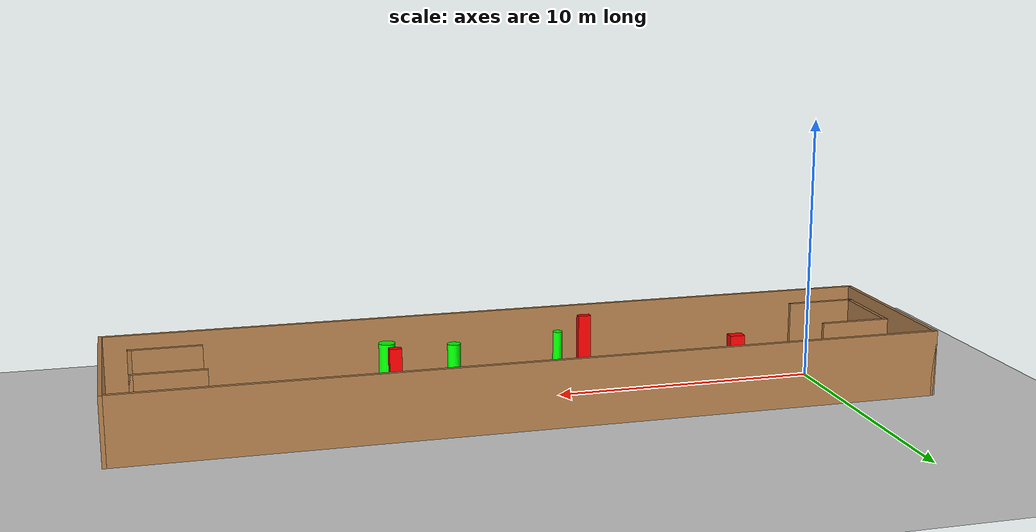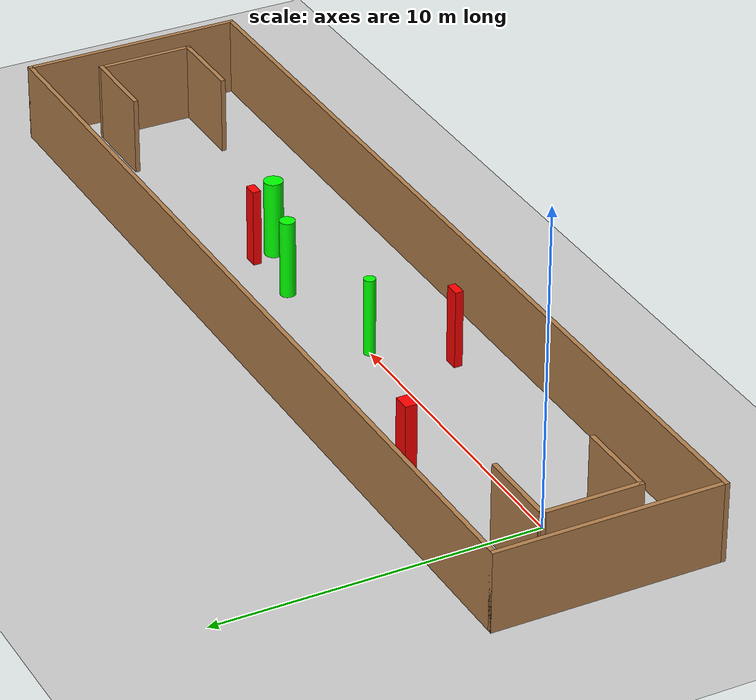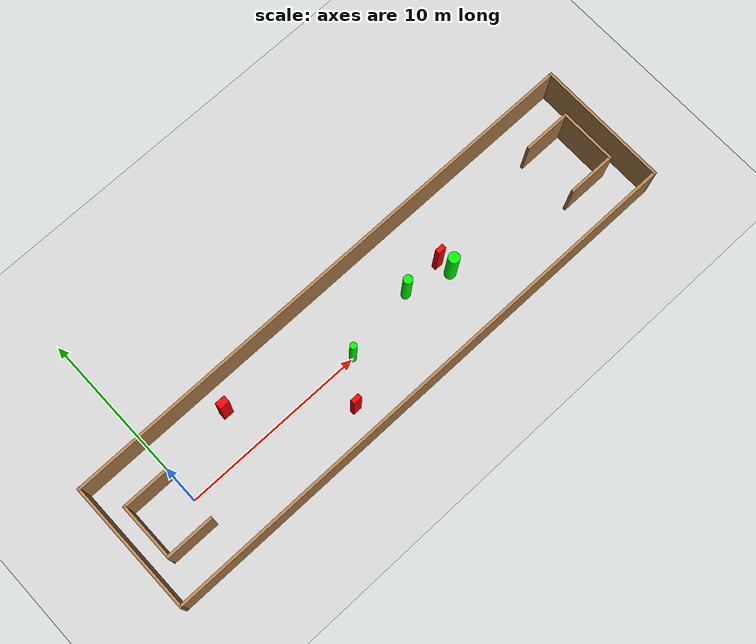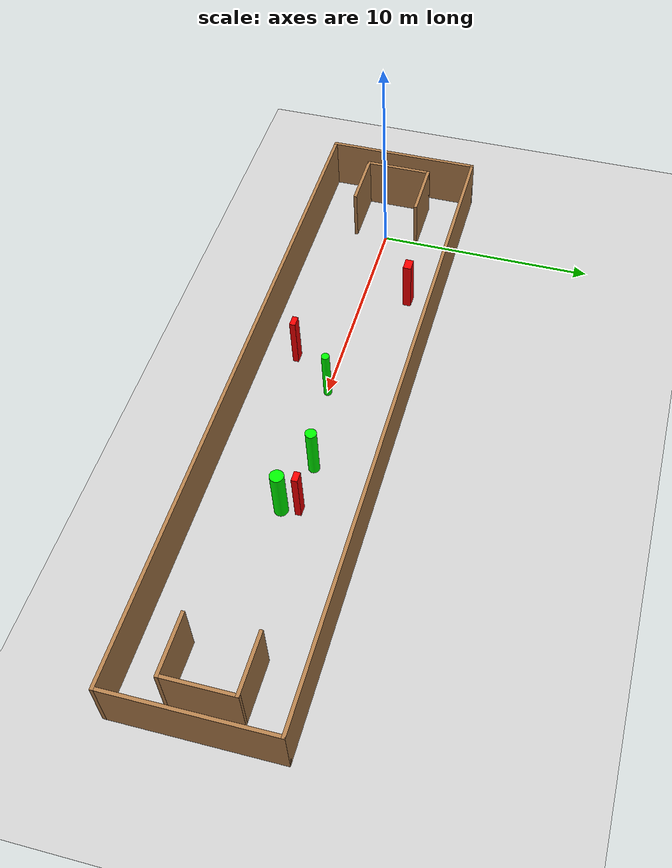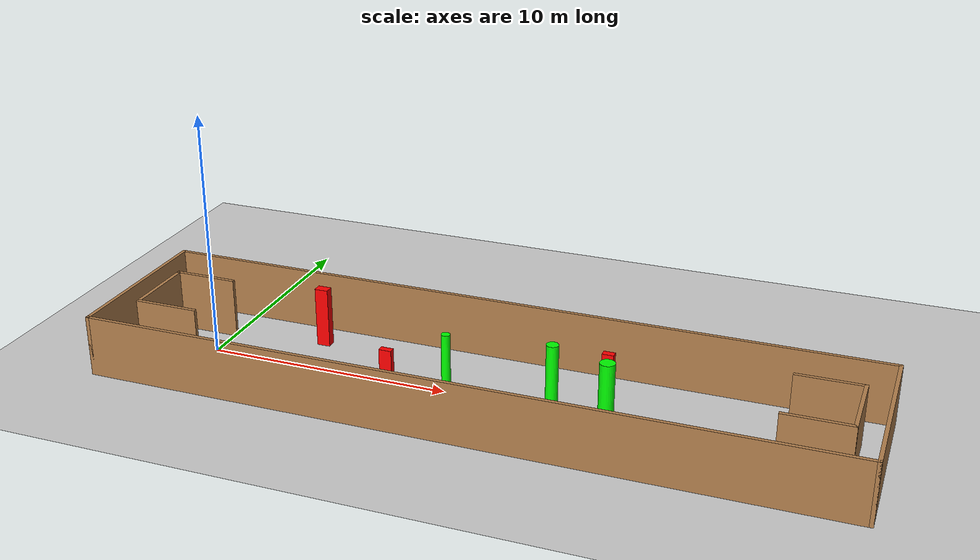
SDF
<sdf version="1.7">
 <world name="default">
  <light name="sun" type="directional">
   <pose>0 0 10 0 -0 0</pose>
   <diffuse>0.8 0.8 0.8 1</diffuse>
   <specular>0.2 0.2 0.2 1</specular>
   <attenuation>
    <range>1000</range>
    <constant>0.9</constant>
    <linear>0.01</linear>
    <quadratic>0.001</quadratic>
   </attenuation>
   <direction>-0.5 0.1 -0.9</direction>
   <spot><inner_angle>0</inner_angle><outer_angle>0</outer_angle><falloff>0</falloff></spot>
  </light>
  <model name="ground_plane">
   <static>1</static>
   <link name="link">
    <collision name="collision">
     <geometry><plane><normal>0 0 1</normal><size>100 100</size></plane></geometry>
     <surface>
      <contact><collide_bitmask>65535</collide_bitmask></contact>
      <friction><ode><mu>100</mu><mu2>50</mu2></ode></friction>
     </surface>
    </collision>
    <visual name="visual">
     <cast_shadows>0</cast_shadows>
     <geometry><plane><normal>0 0 1</normal><size>100 100</size></plane></geometry>
     <material>
      <script><uri>file://media/materials/scripts/gazebo.material</uri><name>Gazebo/Grey</name></script>
     </material>
    </visual>
   </link>
  </model>
  <gravity>0 0 -9.8</gravity>
  <magnetic_field>6e-06 2.3e-05 -4.2e-05</magnetic_field>
  <atmosphere type="adiabatic"/>
  <physics type="ode">
   <max_step_size>0.001</max_step_size>
   <real_time_factor>1</real_time_factor>
   <real_time_update_rate>1000</real_time_update_rate>
  </physics>
  <scene><ambient>0.4 0.4 0.4 1</ambient><background>0.7 0.7 0.7 1</background><shadows>1</shadows></scene>
  <spherical_coordinates>
   <surface_model>EARTH_WGS84</surface_model>
   <latitude_deg>0</latitude_deg>
   <longitude_deg>0</longitude_deg>
   <elevation>0</elevation>
   <heading_deg>0</heading_deg>
  </spherical_coordinates>
  <model name="my_base_walls">
   <link name="Wall_0">
    <collision name="Wall_0_Collision">
     <geometry><box><size>7.15 0.15 2.5</size></box></geometry>
     <pose>0 0 1.25 0 -0 0</pose>
    </collision>
    <visual name="Wall_0_Visual">
     <pose>0 0 1.25 0 -0 0</pose>
     <geometry><box><size>7.15 0.15 2.5</size></box></geometry>
     <material>
      <script><uri>file://media/materials/scripts/gazebo.material</uri><name>Gazebo/Wood</name></script>
      <ambient>1 1 1 1</ambient>
     </material>
     <meta><layer>0</layer></meta>
    </visual>
    <pose>-15 0 0 0 -0 1.5708</pose>
   </link>
   <link name="Wall_10">
    <collision name="Wall_10_Collision">
     <geometry><box><size>2.65 0.15 2.5</size></box></geometry>
     <pose>0 0 1.25 0 -0 0</pose>
    </collision>
    <visual name="Wall_10_Visual">
     <pose>0 0 1.25 0 -0 0</pose>
     <geometry><box><size>2.65 0.15 2.5</size></box></geometry>
     <material>
      <script><uri>file://media/materials/scripts/gazebo.material</uri><name>Gazebo/Wood</name></script>
      <ambient>1 1 1 1</ambient>
     </material>
     <meta><layer>0</layer></meta>
    </visual>
    <pose>-12.75 -1.5 0 0 -0 0</pose>
   </link>
   <link name="Wall_12">
    <collision name="Wall_12_Collision">
     <geometry><box><size>2.65 0.15 2.5</size></box></geometry>
     <pose>0 0 1.25 0 -0 0</pose>
    </collision>
    <visual name="Wall_12_Visual">
     <pose>0 0 1.25 0 -0 0</pose>
     <geometry><box><size>2.65 0.15 2.5</size></box></geometry>
     <material>
      <script><uri>file://media/materials/scripts/gazebo.material</uri><name>Gazebo/Wood</name></script>
      <ambient>1 1 1 1</ambient>
     </material>
     <meta><layer>0</layer></meta>
    </visual>
    <pose>-12.75 1.5 0 0 -0 0</pose>
   </link>
   <link name="Wall_14">
    <collision name="Wall_14_Collision">
     <geometry><box><size>3.15 0.15 2.5</size></box></geometry>
     <pose>0 0 1.25 0 -0 0</pose>
    </collision>
    <visual name="Wall_14_Visual">
     <pose>0 0 1.25 0 -0 0</pose>
     <geometry><box><size>3.15 0.15 2.5</size></box></geometry>
     <material>
      <script><uri>file://media/materials/scripts/gazebo.material</uri><name>Gazebo/Wood</name></script>
      <ambient>1 1 1 1</ambient>
     </material>
     <meta><layer>0</layer></meta>
    </visual>
    <pose>14 0 0 0 -0 -1.5708</pose>
   </link>
   <link name="Wall_15">
    <collision name="Wall_15_Collision">
     <geometry><box><size>2.65 0.15 2.5</size></box></geometry>
     <pose>0 0 1.25 0 -0 0</pose>
    </collision>
    <visual name="Wall_15_Visual">
     <pose>0 0 1.25 0 -0 0</pose>
     <geometry><box><size>2.65 0.15 2.5</size></box></geometry>
     <material>
      <script><uri>file://media/materials/scripts/gazebo.material</uri><name>Gazebo/Wood</name></script>
      <ambient>1 1 1 1</ambient>
     </material>
     <meta><layer>0</layer></meta>
    </visual>
    <pose>12.75 -1.5 0 0 -0 3.14159</pose>
   </link>
   <link name="Wall_17">
    <collision name="Wall_17_Collision">
     <geometry><box><size>2.65 0.15 2.5</size></box></geometry>
     <pose>0 0 1.25 0 -0 0</pose>
    </collision>
    <visual name="Wall_17_Visual">
     <pose>0 0 1.25 0 -0 0</pose>
     <geometry><box><size>2.65 0.15 2.5</size></box></geometry>
     <material>
      <script><uri>file://media/materials/scripts/gazebo.material</uri><name>Gazebo/Wood</name></script>
      <ambient>1 1 1 1</ambient>
     </material>
     <meta><layer>0</layer></meta>
    </visual>
    <pose>12.75 1.5 0 0 -0 3.14159</pose>
   </link>
   <link name="Wall_2">
    <collision name="Wall_2_Collision">
     <geometry><box><size>30.15 0.15 2.5</size></box></geometry>
     <pose>0 0 1.25 0 -0 0</pose>
    </collision>
    <visual name="Wall_2_Visual">
     <pose>0 0 1.25 0 -0 0</pose>
     <geometry><box><size>30.15 0.15 2.5</size></box></geometry>
     <material>
      <script><uri>file://media/materials/scripts/gazebo.material</uri><name>Gazebo/Wood</name></script>
      <ambient>1 1 1 1</ambient>
     </material>
     <meta><layer>0</layer></meta>
    </visual>
    <pose>-0 -3.5 0 0 -0 0</pose>
   </link>
   <link name="Wall_4">
    <collision name="Wall_4_Collision">
     <geometry><box><size>30.15 0.15 2.5</size></box></geometry>
     <pose>0 0 1.25 0 -0 0</pose>
    </collision>
    <visual name="Wall_4_Visual">
     <pose>0 0 1.25 0 -0 0</pose>
     <geometry><box><size>30.15 0.15 2.5</size></box></geometry>
     <material>
      <script><uri>file://media/materials/scripts/gazebo.material</uri><name>Gazebo/Wood</name></script>
      <ambient>1 1 1 1</ambient>
     </material>
     <meta><layer>0</layer></meta>
    </visual>
    <pose>-0 3.5 0 0 -0 0</pose>
   </link>
   <link name="Wall_6">
    <collision name="Wall_6_Collision">
     <geometry><box><size>7.15 0.15 2.5</size></box></geometry>
     <pose>0 0 1.25 0 -0 0</pose>
    </collision>
    <visual name="Wall_6_Visual">
     <pose>0 0 1.25 0 -0 0</pose>
     <geometry><box><size>7.15 0.15 2.5</size></box></geometry>
     <material>
      <script><uri>file://media/materials/scripts/gazebo.material</uri><name>Gazebo/Wood</name></script>
      <ambient>1 1 1 1</ambient>
     </material>
     <meta><layer>0</layer></meta>
    </visual>
    <pose>15 0 0 0 -0 -1.5708</pose>
   </link>
   <link name="Wall_9">
    <collision name="Wall_9_Collision">
     <geometry><box><size>3.15 0.15 2.5</size></box></geometry>
     <pose>0 0 1.25 0 -0 0</pose>
    </collision>
    <visual name="Wall_9_Visual">
     <pose>0 0 1.25 0 -0 0</pose>
     <geometry><box><size>3.15 0.15 2.5</size></box></geometry>
     <material>
      <script><uri>file://media/materials/scripts/gazebo.material</uri><name>Gazebo/Wood</name></script>
      <ambient>1 1 1 1</ambient>
     </material>
     <meta><layer>0</layer></meta>
    </visual>
    <pose>-14 0 0 0 -0 -1.5708</pose>
   </link>
   <static>1</static>
   <pose>11.5 0 0 0 -0 0</pose>
  </model>
  <model name="cylinder1">
   <static>1</static>
   <link name="link">
    <inertial>
     <mass>1</mass>
     <inertia><ixx>0.5</ixx><ixy>0</ixy><ixz>0</ixz><iyy>0.5</iyy><iyz>0</iyz><izz>1</izz></inertia>
    </inertial>
    <collision name="collision">
     <geometry><cylinder><radius>0.3010212206394823</radius><length>2.5</length></cylinder></geometry>
    </collision>
    <visual name="visual">
     <geometry><cylinder><radius>0.3010212206394823</radius><length>2.5</length></cylinder></geometry>
     <material>
      <ambient>0 1 0 1</ambient>
      <diffuse>0 1 0 1</diffuse>
      <specular>0.1 0.1 0.1 1</specular>
      <emissive>0 0 0 0</emissive>
     </material>
    </visual>
   </link>
   <pose>16.474954149837103 -0.0678250759675576 1.25 0 0 0</pose>
  </model>
  <model name="cylinder2">
   <static>1</static>
   <link name="link">
    <inertial>
     <mass>1</mass>
     <inertia><ixx>0.5</ixx><ixy>0</ixy><ixz>0</ixz><iyy>0.5</iyy><iyz>0</iyz><izz>1</izz></inertia>
    </inertial>
    <collision name="collision">
     <geometry><cylinder><radius>0.24308472870980236</radius><length>2.5</length></cylinder></geometry>
    </collision>
    <visual name="visual">
     <geometry><cylinder><radius>0.24308472870980236</radius><length>2.5</length></cylinder></geometry>
     <material>
      <ambient>0 1 0 1</ambient>
      <diffuse>0 1 0 1</diffuse>
      <specular>0.1 0.1 0.1 1</specular>
      <emissive>0 0 0 0</emissive>
     </material>
    </visual>
   </link>
   <pose>14.146517803504352 0.6239491218257163 1.25 0 0 0</pose>
  </model>
  <model name="cylinder3">
   <static>1</static>
   <link name="link">
    <inertial>
     <mass>1</mass>
     <inertia><ixx>0.5</ixx><ixy>0</ixy><ixz>0</ixz><iyy>0.5</iyy><iyz>0</iyz><izz>1</izz></inertia>
    </inertial>
    <collision name="collision">
     <geometry><cylinder><radius>0.18088641584031986</radius><length>2.5</length></cylinder></geometry>
    </collision>
    <visual name="visual">
     <geometry><cylinder><radius>0.18088641584031986</radius><length>2.5</length></cylinder></geometry>
     <material>
      <ambient>0 1 0 1</ambient>
      <diffuse>0 1 0 1</diffuse>
      <specular>0.1 0.1 0.1 1</specular>
      <emissive>0 0 0 0</emissive>
     </material>
    </visual>
   </link>
   <pose>10.084226460878483 0.011837446630632797 1.25 0 0 0</pose>
  </model>
  <model name="box1">
   <static>1</static>
   <link name="link">
    <inertial>
     <mass>1</mass>
     <inertia><ixx>0.083</ixx><ixy>0</ixy><ixz>0</ixz><iyy>0.083</iyy><iyz>0</iyz><izz>0.083</izz></inertia>
    </inertial>
    <collision name="collision">
     <geometry><box><size>0.5511708175753329 0.373319073364049 2.5</size></box></geometry>
    </collision>
    <visual name="visual">
     <geometry><box><size>0.5511708175753329 0.373319073364049 2.5</size></box></geometry>
     <material>
      <ambient>1 0 0 1</ambient>
      <diffuse>1 0 0 1</diffuse>
      <specular>0.1 0.1 0.1 1</specular>
      <emissive>0 0 0 0</emissive>
     </material>
    </visual>
    <sensor name="my_contact" type="contact">
     <contact><collision>box_collision</collision><topic>__default_topic__</topic></contact>
    </sensor>
   </link>
   <pose>3.859774525210053 2.1139471690013067 1.25 0 0 0</pose>
  </model>
  <model name="box2">
   <static>1</static>
   <link name="link">
    <inertial>
     <mass>1</mass>
     <inertia><ixx>0.083</ixx><ixy>0</ixy><ixz>0</ixz><iyy>0.083</iyy><iyz>0</iyz><izz>0.083</izz></inertia>
    </inertial>
    <collision name="collision">
     <geometry><box><size>0.45107105684151 0.2672385295277093 2.5</size></box></geometry>
    </collision>
    <visual name="visual">
     <geometry><box><size>0.45107105684151 0.2672385295277093 2.5</size></box></geometry>
     <material>
      <ambient>1 0 0 1</ambient>
      <diffuse>1 0 0 1</diffuse>
      <specular>0.1 0.1 0.1 1</specular>
      <emissive>0 0 0 0</emissive>
     </material>
    </visual>
    <sensor name="my_contact" type="contact">
     <contact><collision>box_collision</collision><topic>__default_topic__</topic></contact>
    </sensor>
   </link>
   <pose>16.308049224567878 0.6735447452682202 1.25 0 0 0</pose>
  </model>
  <model name="box3">
   <static>1</static>
   <link name="link">
    <inertial>
     <mass>1</mass>
     <inertia><ixx>0.083</ixx><ixy>0</ixy><ixz>0</ixz><iyy>0.083</iyy><iyz>0</iyz><izz>0.083</izz></inertia>
    </inertial>
    <collision name="collision">
     <geometry><box><size>0.4894388638422166 0.2587082472328638 2.5</size></box></geometry>
    </collision>
    <visual name="visual">
     <geometry><box><size>0.4894388638422166 0.2587082472328638 2.5</size></box></geometry>
     <material>
      <ambient>1 0 0 1</ambient>
      <diffuse>1 0 0 1</diffuse>
      <specular>0.1 0.1 0.1 1</specular>
      <emissive>0 0 0 0</emissive>
     </material>
    </visual>
    <sensor name="my_contact" type="contact">
     <contact><collision>box_collision</collision><topic>__default_topic__</topic></contact>
    </sensor>
   </link>
   <pose>8.477893029432824 -1.91099467677189 1.25 0 0 0</pose>
  </model>
 </world>
</sdf>
